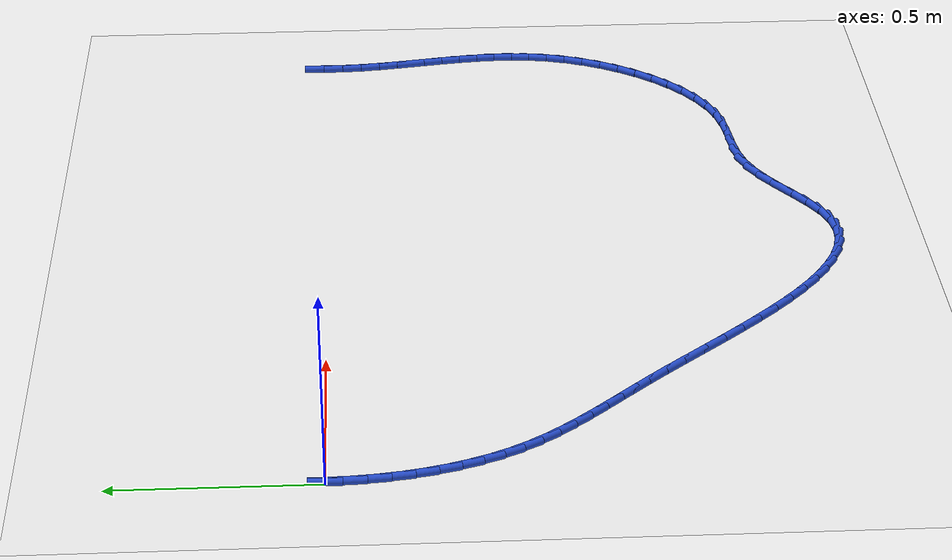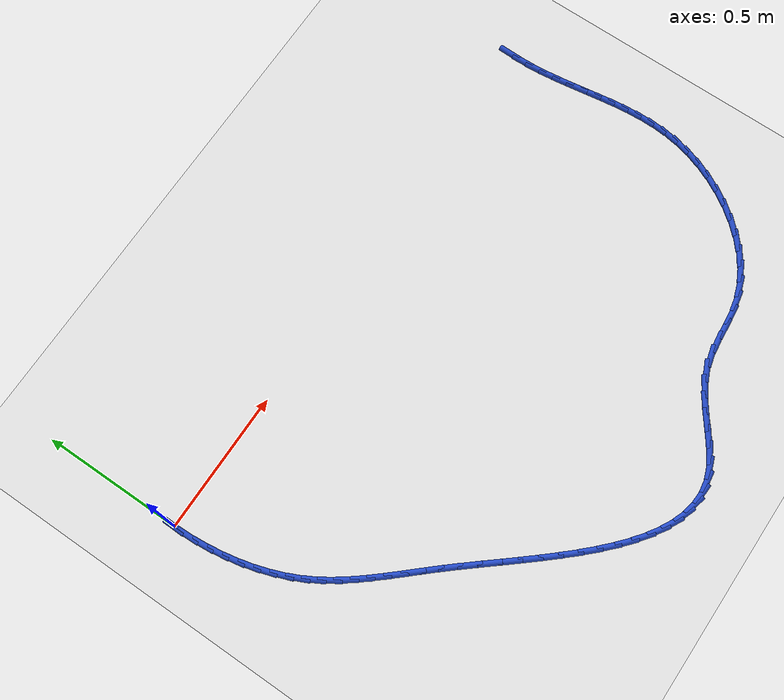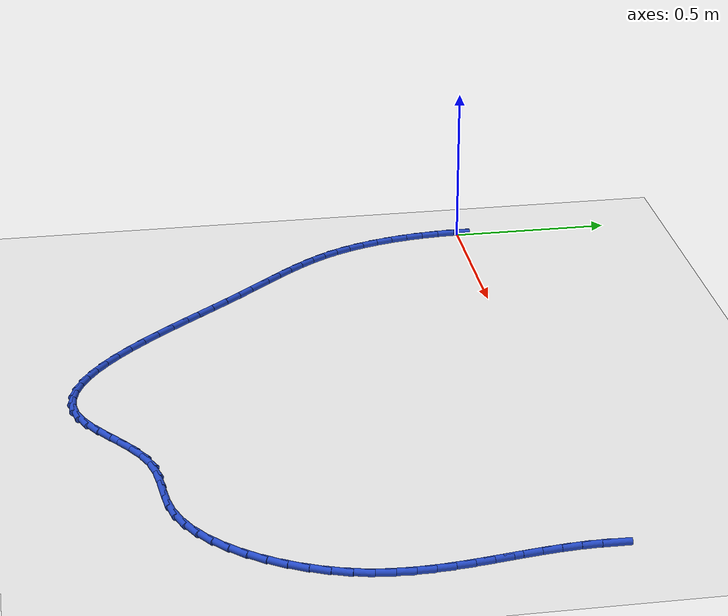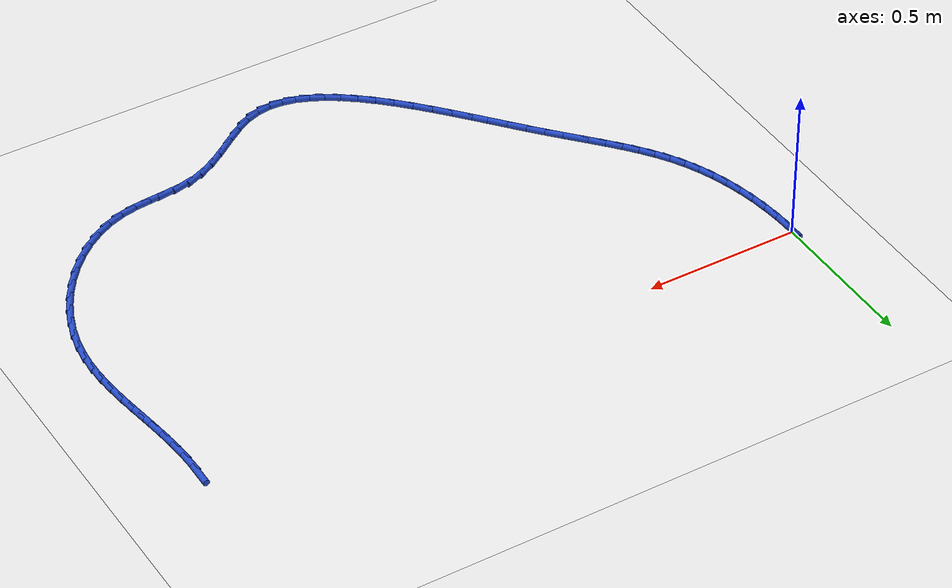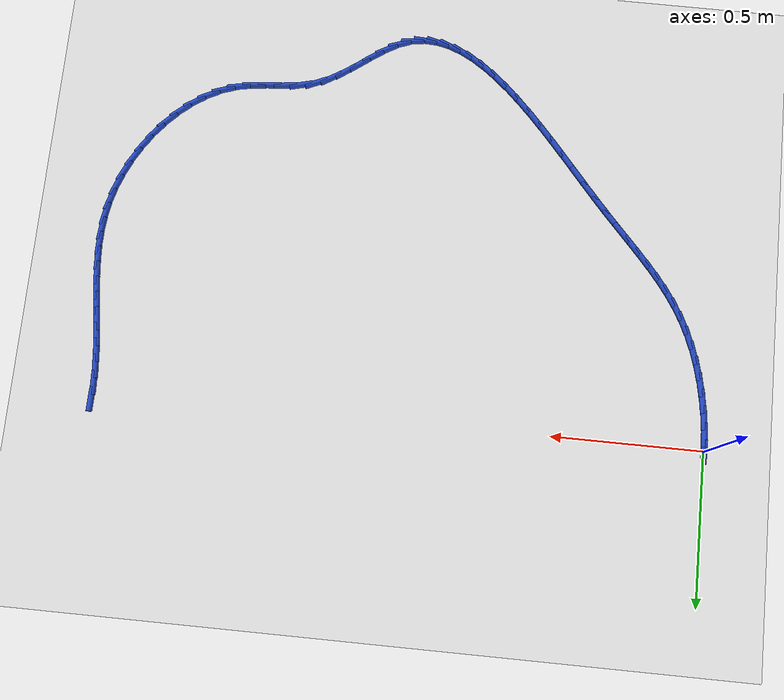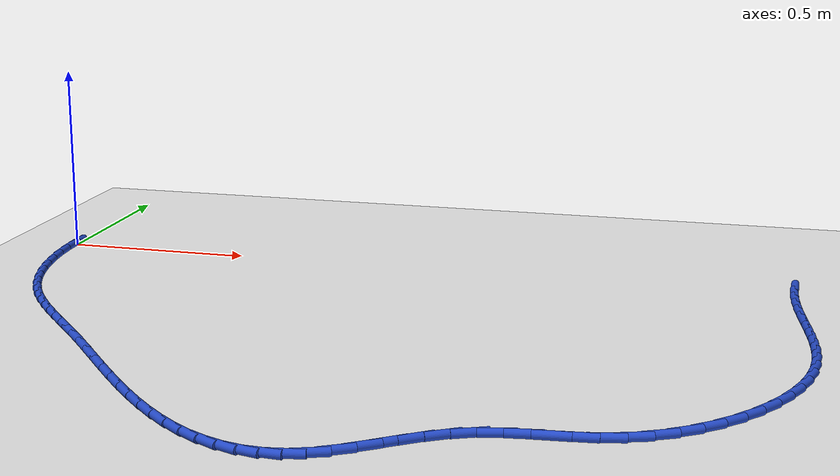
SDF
<sdf version="1.6">
 <world name="default">
  <model name="ground_plane">
   <static>1</static>
   <link name="link">
    <collision name="collision">
     <geometry><plane><normal>0 0 1</normal><size>100 100</size></plane></geometry>
     <surface><friction><ode><mu>100</mu><mu2>50</mu2></ode></friction></surface>
    </collision>
    <visual name="visual">
     <cast_shadows>0</cast_shadows>
     <geometry><plane><normal>0 0 1</normal><size>100 100</size></plane></geometry>
     <material>
      <script><uri>file://media/materials/scripts/gazebo.material</uri><name>Gazebo/WhiteGlow</name></script>
     </material>
    </visual>
   </link>
  </model>
  <model name="line">
   <link name="link_0">
    <pose>1.5612511283791264e-17 -6.938893903907228e-17 0.01 0 1.57 1.5524016907554703</pose>
    <collision name="collision">
     <geometry><cylinder><radius>0.01</radius><length>0.08</length></cylinder></geometry>
    </collision>
    <visual name="visual">
     <material>
      <script><name>Gazebo/Blue</name><uri>file://media/materials/scripts/gazebo.material</uri></script>
     </material>
     <geometry><cylinder><radius>0.01</radius><length>0.08</length></cylinder></geometry>
    </visual>
   </link>
   <link name="link_71">
    <pose>2.0009690979474333 0.025901812945391893 0.01 0 1.57 1.555292005066923</pose>
    <collision name="collision">
     <geometry><cylinder><radius>0.01</radius><length>0.08</length></cylinder></geometry>
    </collision>
    <visual name="visual">
     <material>
      <script><name>Gazebo/Blue</name><uri>file://media/materials/scripts/gazebo.material</uri></script>
     </material>
     <geometry><cylinder><radius>0.01</radius><length>0.08</length></cylinder></geometry>
    </visual>
   </link>
   <link name="link_72">
    <pose>2.00012045644766 -0.028829604115475915 0.01 0 1.57 -1.527593598485886</pose>
    <collision name="collision">
     <geometry><cylinder><radius>0.01</radius><length>0.08</length></cylinder></geometry>
    </collision>
    <visual name="visual">
     <material>
      <script><name>Gazebo/Blue</name><uri>file://media/materials/scripts/gazebo.material</uri></script>
     </material>
     <geometry><cylinder><radius>0.01</radius><length>0.08</length></cylinder></geometry>
    </visual>
   </link>
   <link name="link_73">
    <pose>2.0024521432457614 -0.08276684442005745 0.01 0 1.57 -1.4807374004935128</pose>
    <collision name="collision">
     <geometry><cylinder><radius>0.01</radius><length>0.08</length></cylinder></geometry>
    </collision>
    <visual name="visual">
     <material>
      <script><name>Gazebo/Blue</name><uri>file://media/materials/scripts/gazebo.material</uri></script>
     </material>
     <geometry><cylinder><radius>0.01</radius><length>0.08</length></cylinder></geometry>
    </visual>
   </link>
   <link name="link_74">
    <pose>2.0072606671577127 -0.1360155011964274 0.01 0 1.57 -1.446466355762532</pose>
    <collision name="collision">
     <geometry><cylinder><radius>0.01</radius><length>0.08</length></cylinder></geometry>
    </collision>
    <visual name="visual">
     <material>
      <script><name>Gazebo/Blue</name><uri>file://media/materials/scripts/gazebo.material</uri></script>
     </material>
     <geometry><cylinder><radius>0.01</radius><length>0.08</length></cylinder></geometry>
    </visual>
   </link>
   <link name="link_75">
    <pose>2.0138425369994892 -0.18868116767266307 0.01 0 1.57 -1.425215871566464</pose>
    <collision name="collision">
     <geometry><cylinder><radius>0.01</radius><length>0.08</length></cylinder></geometry>
    </collision>
    <visual name="visual">
     <material>
      <script><name>Gazebo/Blue</name><uri>file://media/materials/scripts/gazebo.material</uri></script>
     </material>
     <geometry><cylinder><radius>0.01</radius><length>0.08</length></cylinder></geometry>
    </visual>
   </link>
   <link name="link_76">
    <pose>2.0214942615870637 -0.24086943707684075 0.01 0 1.57 -1.4172737808712057</pose>
    <collision name="collision">
     <geometry><cylinder><radius>0.01</radius><length>0.08</length></cylinder></geometry>
    </collision>
    <visual name="visual">
     <material>
      <script><name>Gazebo/Blue</name><uri>file://media/materials/scripts/gazebo.material</uri></script>
     </material>
     <geometry><cylinder><radius>0.01</radius><length>0.08</length></cylinder></geometry>
    </visual>
   </link>
   <link name="link_77">
    <pose>2.0295123497364127 -0.292685902637037 0.01 0 1.57 -1.4228850385830123</pose>
    <collision name="collision">
     <geometry><cylinder><radius>0.01</radius><length>0.08</length></cylinder></geometry>
    </collision>
    <visual name="visual">
     <material>
      <script><name>Gazebo/Blue</name><uri>file://media/materials/scripts/gazebo.material</uri></script>
     </material>
     <geometry><cylinder><radius>0.01</radius><length>0.08</length></cylinder></geometry>
    </visual>
   </link>
   <link name="link_78">
    <pose>2.037193310263509 -0.34423615758132875 0.01 0 1.57 -1.4422927855253744</pose>
    <collision name="collision">
     <geometry><cylinder><radius>0.01</radius><length>0.08</length></cylinder></geometry>
    </collision>
    <visual name="visual">
     <material>
      <script><name>Gazebo/Blue</name><uri>file://media/materials/scripts/gazebo.material</uri></script>
     </material>
     <geometry><cylinder><radius>0.01</radius><length>0.08</length></cylinder></geometry>
    </visual>
   </link>
   <link name="link_79">
    <pose>2.0438336519843285 -0.39562579513779117 0.01 0 1.57 -1.4757052227229384</pose>
    <collision name="collision">
     <geometry><cylinder><radius>0.01</radius><length>0.08</length></cylinder></geometry>
    </collision>
    <visual name="visual">
     <material>
      <script><name>Gazebo/Blue</name><uri>file://media/materials/scripts/gazebo.material</uri></script>
     </material>
     <geometry><cylinder><radius>0.01</radius><length>0.08</length></cylinder></geometry>
    </visual>
   </link>
   <link name="link_80">
    <pose>2.048729883714845 -0.44696040853450103 0.01 0 1.57 -1.5231798828189957</pose>
    <collision name="collision">
     <geometry><cylinder><radius>0.01</radius><length>0.08</length></cylinder></geometry>
    </collision>
    <visual name="visual">
     <material>
      <script><name>Gazebo/Blue</name><uri>file://media/materials/scripts/gazebo.material</uri></script>
     </material>
     <geometry><cylinder><radius>0.01</radius><length>0.08</length></cylinder></geometry>
    </visual>
   </link>
   <link name="link_81">
    <pose>2.051178514271033 -0.4983455909995351 0.01 0 1.57 1.5571680771700847</pose>
    <collision name="collision">
     <geometry><cylinder><radius>0.01</radius><length>0.08</length></cylinder></geometry>
    </collision>
    <visual name="visual">
     <material>
      <script><name>Gazebo/Blue</name><uri>file://media/materials/scripts/gazebo.material</uri></script>
     </material>
     <geometry><cylinder><radius>0.01</radius><length>0.08</length></cylinder></geometry>
    </visual>
   </link>
   <link name="link_82">
    <pose>2.050476052468867 -0.5498869357609704 0.01 0 1.57 1.483053609796497</pose>
    <collision name="collision">
     <geometry><cylinder><radius>0.01</radius><length>0.08</length></cylinder></geometry>
    </collision>
    <visual name="visual">
     <material>
      <script><name>Gazebo/Blue</name><uri>file://media/materials/scripts/gazebo.material</uri></script>
     </material>
     <geometry><cylinder><radius>0.01</radius><length>0.08</length></cylinder></geometry>
    </visual>
   </link>
   <link name="link_83">
    <pose>2.045919007124323 -0.6016900360468818 0.01 0 1.57 1.3978242276749737</pose>
    <collision name="collision">
     <geometry><cylinder><radius>0.01</radius><length>0.08</length></cylinder></geometry>
    </collision>
    <visual name="visual">
     <material>
      <script><name>Gazebo/Blue</name><uri>file://media/materials/scripts/gazebo.material</uri></script>
     </material>
     <geometry><cylinder><radius>0.01</radius><length>0.08</length></cylinder></geometry>
    </visual>
   </link>
   <link name="link_84">
    <pose>2.036803887053374 -0.6538604850853464 0.01 0 1.57 1.3059098694865447</pose>
    <collision name="collision">
     <geometry><cylinder><radius>0.01</radius><length>0.08</length></cylinder></geometry>
    </collision>
    <visual name="visual">
     <material>
      <script><name>Gazebo/Blue</name><uri>file://media/materials/scripts/gazebo.material</uri></script>
     </material>
     <geometry><cylinder><radius>0.01</radius><length>0.08</length></cylinder></geometry>
    </visual>
   </link>
   <link name="link_85">
    <pose>2.0225521774841093 -0.7063992864144898 0.01 0 1.57 1.2176327936521416</pose>
    <collision name="collision">
     <geometry><cylinder><radius>0.01</radius><length>0.08</length></cylinder></geometry>
    </collision>
    <visual name="visual">
     <material>
      <script><name>Gazebo/Blue</name><uri>file://media/materials/scripts/gazebo.material</uri></script>
     </material>
     <geometry><cylinder><radius>0.01</radius><length>0.08</length></cylinder></geometry>
    </visual>
   </link>
   <link name="link_86">
    <pose>2.0032562549576136 -0.7587459911092931 0.01 0 1.57 1.1336282608530777</pose>
    <collision name="collision">
     <geometry><cylinder><radius>0.01</radius><length>0.08</length></cylinder></geometry>
    </collision>
    <visual name="visual">
     <material>
      <script><name>Gazebo/Blue</name><uri>file://media/materials/scripts/gazebo.material</uri></script>
     </material>
     <geometry><cylinder><radius>0.01</radius><length>0.08</length></cylinder></geometry>
    </visual>
   </link>
   <link name="link_87">
    <pose>1.979232653239716 -0.8101525585685191 0.01 0 1.57 1.0512840198426938</pose>
    <collision name="collision">
     <geometry><cylinder><radius>0.01</radius><length>0.08</length></cylinder></geometry>
    </collision>
    <visual name="visual">
     <material>
      <script><name>Gazebo/Blue</name><uri>file://media/materials/scripts/gazebo.material</uri></script>
     </material>
     <geometry><cylinder><radius>0.01</radius><length>0.08</length></cylinder></geometry>
    </visual>
   </link>
   <link name="link_88">
    <pose>1.9507980638258764 -0.8598708161908757 0.01 0 1.57 0.9681835438101066</pose>
    <collision name="collision">
     <geometry><cylinder><radius>0.01</radius><length>0.08</length></cylinder></geometry>
    </collision>
    <visual name="visual">
     <material>
      <script><name>Gazebo/Blue</name><uri>file://media/materials/scripts/gazebo.material</uri></script>
     </material>
     <geometry><cylinder><radius>0.01</radius><length>0.08</length></cylinder></geometry>
    </visual>
   </link>
   <link name="link_89">
    <pose>1.9182691782115524 -0.907152591375073 0.01 0 1.57 0.8819906615480934</pose>
    <collision name="collision">
     <geometry><cylinder><radius>0.01</radius><length>0.08</length></cylinder></geometry>
    </collision>
    <visual name="visual">
     <material>
      <script><name>Gazebo/Blue</name><uri>file://media/materials/scripts/gazebo.material</uri></script>
     </material>
     <geometry><cylinder><radius>0.01</radius><length>0.08</length></cylinder></geometry>
    </visual>
   </link>
   <link name="link_90">
    <pose>1.8819626878922038 -0.9512497115198204 0.01 0 1.57 0.7903634741954115</pose>
    <collision name="collision">
     <geometry><cylinder><radius>0.01</radius><length>0.08</length></cylinder></geometry>
    </collision>
    <visual name="visual">
     <material>
      <script><name>Gazebo/Blue</name><uri>file://media/materials/scripts/gazebo.material</uri></script>
     </material>
     <geometry><cylinder><radius>0.01</radius><length>0.08</length></cylinder></geometry>
    </visual>
   </link>
   <link name="link_91">
    <pose>1.8421952843632883 -0.9914140040238278 0.01 0 1.57 0.6909249462815353</pose>
    <collision name="collision">
     <geometry><cylinder><radius>0.01</radius><length>0.08</length></cylinder></geometry>
    </collision>
    <visual name="visual">
     <material>
      <script><name>Gazebo/Blue</name><uri>file://media/materials/scripts/gazebo.material</uri></script>
     </material>
     <geometry><cylinder><radius>0.01</radius><length>0.08</length></cylinder></geometry>
    </visual>
   </link>
   <link name="link_92">
    <pose>1.799283659120267 -1.0268972962858038 0.01 0 1.57 0.581333765559419</pose>
    <collision name="collision">
     <geometry><cylinder><radius>0.01</radius><length>0.08</length></cylinder></geometry>
    </collision>
    <visual name="visual">
     <material>
      <script><name>Gazebo/Blue</name><uri>file://media/materials/scripts/gazebo.material</uri></script>
     </material>
     <geometry><cylinder><radius>0.01</radius><length>0.08</length></cylinder></geometry>
    </visual>
   </link>
   <link name="link_93">
    <pose>1.7535445036585966 -1.0569514157044577 0.01 0 1.57 0.45952352879976055</pose>
    <collision name="collision">
     <geometry><cylinder><radius>0.01</radius><length>0.08</length></cylinder></geometry>
    </collision>
    <visual name="visual">
     <material>
      <script><name>Gazebo/Blue</name><uri>file://media/materials/scripts/gazebo.material</uri></script>
     </material>
     <geometry><cylinder><radius>0.01</radius><length>0.08</length></cylinder></geometry>
    </visual>
   </link>
   <link name="link_94">
    <pose>1.705294509473737 -1.0808281896784993 0.01 0 1.57 0.32418469157742663</pose>
    <collision name="collision">
     <geometry><cylinder><radius>0.01</radius><length>0.08</length></cylinder></geometry>
    </collision>
    <visual name="visual">
     <material>
      <script><name>Gazebo/Blue</name><uri>file://media/materials/scripts/gazebo.material</uri></script>
     </material>
     <geometry><cylinder><radius>0.01</radius><length>0.08</length></cylinder></geometry>
    </visual>
   </link>
   <link name="link_95">
    <pose>1.6548503680611466 -1.0977794456066383 0.01 0 1.57 0.18608619970227142</pose>
    <collision name="collision">
     <geometry><cylinder><radius>0.01</radius><length>0.08</length></cylinder></geometry>
    </collision>
    <visual name="visual">
     <material>
      <script><name>Gazebo/Blue</name><uri>file://media/materials/scripts/gazebo.material</uri></script>
     </material>
     <geometry><cylinder><radius>0.01</radius><length>0.08</length></cylinder></geometry>
    </visual>
   </link>
   <link name="link_96">
    <pose>1.6026006153679992 -1.1076162092311765 0.01 0 1.57 0.10033060593654737</pose>
    <collision name="collision">
     <geometry><cylinder><radius>0.01</radius><length>0.08</length></cylinder></geometry>
    </collision>
    <visual name="visual">
     <material>
      <script><name>Gazebo/Blue</name><uri>file://media/materials/scripts/gazebo.material</uri></script>
     </material>
     <geometry><cylinder><radius>0.01</radius><length>0.08</length></cylinder></geometry>
    </visual>
   </link>
   <link name="link_97">
    <pose>1.5492977170561897 -1.1129821383042733 0.01 0 1.57 0.08269851919452541</pose>
    <collision name="collision">
     <geometry><cylinder><radius>0.01</radius><length>0.08</length></cylinder></geometry>
    </collision>
    <visual name="visual">
     <material>
      <script><name>Gazebo/Blue</name><uri>file://media/materials/scripts/gazebo.material</uri></script>
     </material>
     <geometry><cylinder><radius>0.01</radius><length>0.08</length></cylinder></geometry>
    </visual>
   </link>
   <link name="link_98">
    <pose>1.495809099102768 -1.1174156794766064 0.01 0 1.57 0.13253346845307523</pose>
    <collision name="collision">
     <geometry><cylinder><radius>0.01</radius><length>0.08</length></cylinder></geometry>
    </collision>
    <visual name="visual">
     <material>
      <script><name>Gazebo/Blue</name><uri>file://media/materials/scripts/gazebo.material</uri></script>
     </material>
     <geometry><cylinder><radius>0.01</radius><length>0.08</length></cylinder></geometry>
    </visual>
   </link>
   <link name="link_99">
    <pose>1.4430022317926334 -1.1244556242671706 0.01 0 1.57 0.25177418851568784</pose>
    <collision name="collision">
     <geometry><cylinder><radius>0.01</radius><length>0.08</length></cylinder></geometry>
    </collision>
    <visual name="visual">
     <material>
      <script><name>Gazebo/Blue</name><uri>file://media/materials/scripts/gazebo.material</uri></script>
     </material>
     <geometry><cylinder><radius>0.01</radius><length>0.08</length></cylinder></geometry>
    </visual>
   </link>
   <link name="link_100">
    <pose>1.3917445854106834 -1.1376407641949609 0.01 0 1.57 0.41930967961771437</pose>
    <collision name="collision">
     <geometry><cylinder><radius>0.01</radius><length>0.08</length></cylinder></geometry>
    </collision>
    <visual name="visual">
     <material>
      <script><name>Gazebo/Blue</name><uri>file://media/materials/scripts/gazebo.material</uri></script>
     </material>
     <geometry><cylinder><radius>0.01</radius><length>0.08</length></cylinder></geometry>
    </visual>
   </link>
   <link name="link_101">
    <pose>1.342705847801569 -1.1594995270905357 0.01 0 1.57 0.54683121609209</pose>
    <collision name="collision">
     <geometry><cylinder><radius>0.01</radius><length>0.08</length></cylinder></geometry>
    </collision>
    <visual name="visual">
     <material>
      <script><name>Gazebo/Blue</name><uri>file://media/materials/scripts/gazebo.material</uri></script>
     </material>
     <geometry><cylinder><radius>0.01</radius><length>0.08</length></cylinder></geometry>
    </visual>
   </link>
   <link name="link_102">
    <pose>1.2956869718850186 -1.188122443153548 0.01 0 1.57 0.6173994171925615</pose>
    <collision name="collision">
     <geometry><cylinder><radius>0.01</radius><length>0.08</length></cylinder></geometry>
    </collision>
    <visual name="visual">
     <material>
      <script><name>Gazebo/Blue</name><uri>file://media/materials/scripts/gazebo.material</uri></script>
     </material>
     <geometry><cylinder><radius>0.01</radius><length>0.08</length></cylinder></geometry>
    </visual>
   </link>
   <link name="link_103">
    <pose>1.2502504594483694 -1.2203819245073877 0.01 0 1.57 0.6369623829071067</pose>
    <collision name="collision">
     <geometry><cylinder><radius>0.01</radius><length>0.08</length></cylinder></geometry>
    </collision>
    <visual name="visual">
     <material>
      <script><name>Gazebo/Blue</name><uri>file://media/materials/scripts/gazebo.material</uri></script>
     </material>
     <geometry><cylinder><radius>0.01</radius><length>0.08</length></cylinder></geometry>
    </visual>
   </link>
   <link name="link_104">
    <pose>1.2059588056895396 -1.2531503496136658 0.01 0 1.57 0.6051723428902357</pose>
    <collision name="collision">
     <geometry><cylinder><radius>0.01</radius><length>0.08</length></cylinder></geometry>
    </collision>
    <visual name="visual">
     <material>
      <script><name>Gazebo/Blue</name><uri>file://media/materials/scripts/gazebo.material</uri></script>
     </material>
     <geometry><cylinder><radius>0.01</radius><length>0.08</length></cylinder></geometry>
    </visual>
   </link>
   <link name="link_105">
    <pose>1.1623745058064505 -1.2833000969339932 0.01 0 1.57 0.513074391189238</pose>
    <collision name="collision">
     <geometry><cylinder><radius>0.01</radius><length>0.08</length></cylinder></geometry>
    </collision>
    <visual name="visual">
     <material>
      <script><name>Gazebo/Blue</name><uri>file://media/materials/scripts/gazebo.material</uri></script>
     </material>
     <geometry><cylinder><radius>0.01</radius><length>0.08</length></cylinder></geometry>
    </visual>
   </link>
   <link name="link_106">
    <pose>1.1190600549970207 -1.307703544929981 0.01 0 1.57 0.3472021197142845</pose>
    <collision name="collision">
     <geometry><cylinder><radius>0.01</radius><length>0.08</length></cylinder></geometry>
    </collision>
    <visual name="visual">
     <material>
      <script><name>Gazebo/Blue</name><uri>file://media/materials/scripts/gazebo.material</uri></script>
     </material>
     <geometry><cylinder><radius>0.01</radius><length>0.08</length></cylinder></geometry>
    </visual>
   </link>
   <link name="link_107">
    <pose>1.0756033796435929 -1.323428822469384 0.01 0 1.57 0.14406270010456765</pose>
    <collision name="collision">
     <geometry><cylinder><radius>0.01</radius><length>0.08</length></cylinder></geometry>
    </collision>
    <visual name="visual">
     <material>
      <script><name>Gazebo/Blue</name><uri>file://media/materials/scripts/gazebo.material</uri></script>
     </material>
     <geometry><cylinder><radius>0.01</radius><length>0.08</length></cylinder></geometry>
    </visual>
   </link>
   <link name="link_108">
    <pose>1.031881776071749 -1.329771413739679 0.01 0 1.57 -0.05299899240003369</pose>
    <collision name="collision">
     <geometry><cylinder><radius>0.01</radius><length>0.08</length></cylinder></geometry>
    </collision>
    <visual name="visual">
     <material>
      <script><name>Gazebo/Blue</name><uri>file://media/materials/scripts/gazebo.material</uri></script>
     </material>
     <geometry><cylinder><radius>0.01</radius><length>0.08</length></cylinder></geometry>
    </visual>
   </link>
   <link name="link_109">
    <pose>0.9879562972646163 -1.3274412254635515 0.01 0 1.57 -0.22898575991409809</pose>
    <collision name="collision">
     <geometry><cylinder><radius>0.01</radius><length>0.08</length></cylinder></geometry>
    </collision>
    <visual name="visual">
     <material>
      <script><name>Gazebo/Blue</name><uri>file://media/materials/scripts/gazebo.material</uri></script>
     </material>
     <geometry><cylinder><radius>0.01</radius><length>0.08</length></cylinder></geometry>
    </visual>
   </link>
   <link name="link_110">
    <pose>0.9438909296725397 -1.3171707440197817 0.01 0 1.57 -0.37702094770193484</pose>
    <collision name="collision">
     <geometry><cylinder><radius>0.01</radius><length>0.08</length></cylinder></geometry>
    </collision>
    <visual name="visual">
     <material>
      <script><name>Gazebo/Blue</name><uri>file://media/materials/scripts/gazebo.material</uri></script>
     </material>
     <geometry><cylinder><radius>0.01</radius><length>0.08</length></cylinder></geometry>
    </visual>
   </link>
   <link name="link_111">
    <pose>0.8997496597458613 -1.2996924557871512 0.01 0 1.57 -0.49707566649768786</pose>
    <collision name="collision">
     <geometry><cylinder><radius>0.01</radius><length>0.08</length></cylinder></geometry>
    </collision>
    <visual name="visual">
     <material>
      <script><name>Gazebo/Blue</name><uri>file://media/materials/scripts/gazebo.material</uri></script>
     </material>
     <geometry><cylinder><radius>0.01</radius><length>0.08</length></cylinder></geometry>
    </visual>
   </link>
   <link name="link_112">
    <pose>0.8555964739349236 -1.2757388471444406 0.01 0 1.57 -0.5926301916593898</pose>
    <collision name="collision">
     <geometry><cylinder><radius>0.01</radius><length>0.08</length></cylinder></geometry>
    </collision>
    <visual name="visual">
     <material>
      <script><name>Gazebo/Blue</name><uri>file://media/materials/scripts/gazebo.material</uri></script>
     </material>
     <geometry><cylinder><radius>0.01</radius><length>0.08</length></cylinder></geometry>
    </visual>
   </link>
   <link name="link_113">
    <pose>0.8114953586900687 -1.246042404470431 0.01 0 1.57 -0.6680336843901751</pose>
    <collision name="collision">
     <geometry><cylinder><radius>0.01</radius><length>0.08</length></cylinder></geometry>
    </collision>
    <visual name="visual">
     <material>
      <script><name>Gazebo/Blue</name><uri>file://media/materials/scripts/gazebo.material</uri></script>
     </material>
     <geometry><cylinder><radius>0.01</radius><length>0.08</length></cylinder></geometry>
    </visual>
   </link>
   <link name="link_114">
    <pose>0.7675103004616409 -1.2113356141439036 0.01 0 1.57 -0.727239611482666</pose>
    <collision name="collision">
     <geometry><cylinder><radius>0.01</radius><length>0.08</length></cylinder></geometry>
    </collision>
    <visual name="visual">
     <material>
      <script><name>Gazebo/Blue</name><uri>file://media/materials/scripts/gazebo.material</uri></script>
     </material>
     <geometry><cylinder><radius>0.01</radius><length>0.08</length></cylinder></geometry>
    </visual>
   </link>
   <link name="link_115">
    <pose>0.7237052856999822 -1.17235096254364 0.01 0 1.57 -0.7734235210308071</pose>
    <collision name="collision">
     <geometry><cylinder><radius>0.01</radius><length>0.08</length></cylinder></geometry>
    </collision>
    <visual name="visual">
     <material>
      <script><name>Gazebo/Blue</name><uri>file://media/materials/scripts/gazebo.material</uri></script>
     </material>
     <geometry><cylinder><radius>0.01</radius><length>0.08</length></cylinder></geometry>
    </visual>
   </link>
   <link name="link_116">
    <pose>0.6801443008554352 -1.1298209360484206 0.01 0 1.57 -0.808983446549202</pose>
    <collision name="collision">
     <geometry><cylinder><radius>0.01</radius><length>0.08</length></cylinder></geometry>
    </collision>
    <visual name="visual">
     <material>
      <script><name>Gazebo/Blue</name><uri>file://media/materials/scripts/gazebo.material</uri></script>
     </material>
     <geometry><cylinder><radius>0.01</radius><length>0.08</length></cylinder></geometry>
    </visual>
   </link>
   <link name="link_117">
    <pose>0.6368913323783421 -1.0844780210370253 0.01 0 1.57 -0.8356563153162583</pose>
    <collision name="collision">
     <geometry><cylinder><radius>0.01</radius><length>0.08</length></cylinder></geometry>
    </collision>
    <visual name="visual">
     <material>
      <script><name>Gazebo/Blue</name><uri>file://media/materials/scripts/gazebo.material</uri></script>
     </material>
     <geometry><cylinder><radius>0.01</radius><length>0.08</length></cylinder></geometry>
    </visual>
   </link>
   <link name="link_118">
    <pose>0.5940103667190471 -1.0370547038882376 0.01 0 1.57 -0.854641804803414</pose>
    <collision name="collision">
     <geometry><cylinder><radius>0.01</radius><length>0.08</length></cylinder></geometry>
    </collision>
    <visual name="visual">
     <material>
      <script><name>Gazebo/Blue</name><uri>file://media/materials/scripts/gazebo.material</uri></script>
     </material>
     <geometry><cylinder><radius>0.01</radius><length>0.08</length></cylinder></geometry>
    </visual>
   </link>
   <link name="link_119">
    <pose>0.5515653903278921 -0.9882834709808368 0.01 0 1.57 -0.8666981033830076</pose>
    <collision name="collision">
     <geometry><cylinder><radius>0.01</radius><length>0.08</length></cylinder></geometry>
    </collision>
    <visual name="visual">
     <material>
      <script><name>Gazebo/Blue</name><uri>file://media/materials/scripts/gazebo.material</uri></script>
     </material>
     <geometry><cylinder><radius>0.01</radius><length>0.08</length></cylinder></geometry>
    </visual>
   </link>
   <link name="link_120">
    <pose>0.5096203896552196 -0.938896808693604 0.01 0 1.57 -0.872201121365766</pose>
    <collision name="collision">
     <geometry><cylinder><radius>0.01</radius><length>0.08</length></cylinder></geometry>
    </collision>
    <visual name="visual">
     <material>
      <script><name>Gazebo/Blue</name><uri>file://media/materials/scripts/gazebo.material</uri></script>
     </material>
     <geometry><cylinder><radius>0.01</radius><length>0.08</length></cylinder></geometry>
    </visual>
   </link>
   <link name="link_121">
    <pose>0.4682393511513729 -0.889627203405321 0.01 0 1.57 -0.8711657183488817</pose>
    <collision name="collision">
     <geometry><cylinder><radius>0.01</radius><length>0.08</length></cylinder></geometry>
    </collision>
    <visual name="visual">
     <material>
      <script><name>Gazebo/Blue</name><uri>file://media/materials/scripts/gazebo.material</uri></script>
     </material>
     <geometry><cylinder><radius>0.01</radius><length>0.08</length></cylinder></geometry>
    </visual>
   </link>
   <link name="link_122">
    <pose>0.42748626126669376 -0.8412071414947674 0.01 0 1.57 -0.8632261510790192</pose>
    <collision name="collision">
     <geometry><cylinder><radius>0.01</radius><length>0.08</length></cylinder></geometry>
    </collision>
    <visual name="visual">
     <material>
      <script><name>Gazebo/Blue</name><uri>file://media/materials/scripts/gazebo.material</uri></script>
     </material>
     <geometry><cylinder><radius>0.01</radius><length>0.08</length></cylinder></geometry>
    </visual>
   </link>
   <link name="link_123">
    <pose>0.3874251064515264 -0.7943691093407259 0.01 0 1.57 -0.8486658194069999</pose>
    <collision name="collision">
     <geometry><cylinder><radius>0.01</radius><length>0.08</length></cylinder></geometry>
    </collision>
    <visual name="visual">
     <material>
      <script><name>Gazebo/Blue</name><uri>file://media/materials/scripts/gazebo.material</uri></script>
     </material>
     <geometry><cylinder><radius>0.01</radius><length>0.08</length></cylinder></geometry>
    </visual>
   </link>
   <link name="link_124">
    <pose>0.348132480895037 -0.7497611996907008 0.01 0 1.57 -0.8373306776205288</pose>
    <collision name="collision">
     <geometry><cylinder><radius>0.01</radius><length>0.08</length></cylinder></geometry>
    </collision>
    <visual name="visual">
     <material>
      <script><name>Gazebo/Blue</name><uri>file://media/materials/scripts/gazebo.material</uri></script>
     </material>
     <geometry><cylinder><radius>0.01</radius><length>0.08</length></cylinder></geometry>
    </visual>
   </link>
   <link name="link_125">
    <pose>0.30980465679836866 -0.7072304050984672 0.01 0 1.57 -0.8358805994593842</pose>
    <collision name="collision">
     <geometry><cylinder><radius>0.01</radius><length>0.08</length></cylinder></geometry>
    </collision>
    <visual name="visual">
     <material>
      <script><name>Gazebo/Blue</name><uri>file://media/materials/scripts/gazebo.material</uri></script>
     </material>
     <geometry><cylinder><radius>0.01</radius><length>0.08</length></cylinder></geometry>
    </visual>
   </link>
   <link name="link_126">
    <pose>0.2727040131838131 -0.6661812125450947 0.01 0 1.57 -0.8454667610008695</pose>
    <collision name="collision">
     <geometry><cylinder><radius>0.01</radius><length>0.08</length></cylinder></geometry>
    </collision>
    <visual name="visual">
     <material>
      <script><name>Gazebo/Blue</name><uri>file://media/materials/scripts/gazebo.material</uri></script>
     </material>
     <geometry><cylinder><radius>0.01</radius><length>0.08</length></cylinder></geometry>
    </visual>
   </link>
   <link name="link_127">
    <pose>0.23709362447524177 -0.6260134541353782 0.01 0 1.57 -0.8669788657166422</pose>
    <collision name="collision">
     <geometry><cylinder><radius>0.01</radius><length>0.08</length></cylinder></geometry>
    </collision>
    <visual name="visual">
     <material>
      <script><name>Gazebo/Blue</name><uri>file://media/materials/scripts/gazebo.material</uri></script>
     </material>
     <geometry><cylinder><radius>0.01</radius><length>0.08</length></cylinder></geometry>
    </visual>
   </link>
   <link name="link_128">
    <pose>0.20323656509652435 -0.5861269619741123 0.01 0 1.57 -0.900983323972883</pose>
    <collision name="collision">
     <geometry><cylinder><radius>0.01</radius><length>0.08</length></cylinder></geometry>
    </collision>
    <visual name="visual">
     <material>
      <script><name>Gazebo/Blue</name><uri>file://media/materials/scripts/gazebo.material</uri></script>
     </material>
     <geometry><cylinder><radius>0.01</radius><length>0.08</length></cylinder></geometry>
    </visual>
   </link>
   <link name="link_129">
    <pose>0.1713959094715309 -0.5459215681660907 0.01 0 1.57 -0.9475493883896934</pose>
    <collision name="collision">
     <geometry><cylinder><radius>0.01</radius><length>0.08</length></cylinder></geometry>
    </collision>
    <visual name="visual">
     <material>
      <script><name>Gazebo/Blue</name><uri>file://media/materials/scripts/gazebo.material</uri></script>
     </material>
     <geometry><cylinder><radius>0.01</radius><length>0.08</length></cylinder></geometry>
    </visual>
   </link>
   <link name="link_130">
    <pose>0.14183473202413172 -0.5047971048161081 0.01 0 1.57 -1.0060437252002477</pose>
    <collision name="collision">
     <geometry><cylinder><radius>0.01</radius><length>0.08</length></cylinder></geometry>
    </collision>
    <visual name="visual">
     <material>
      <script><name>Gazebo/Blue</name><uri>file://media/materials/scripts/gazebo.material</uri></script>
     </material>
     <geometry><cylinder><radius>0.01</radius><length>0.08</length></cylinder></geometry>
    </visual>
   </link>
   <link name="link_131">
    <pose>0.11481610717819656 -0.4621534040289584 0.01 0 1.57 -1.0748465708976542</pose>
    <collision name="collision">
     <geometry><cylinder><radius>0.01</radius><length>0.08</length></cylinder></geometry>
    </collision>
    <visual name="visual">
     <material>
      <script><name>Gazebo/Blue</name><uri>file://media/materials/scripts/gazebo.material</uri></script>
     </material>
     <geometry><cylinder><radius>0.01</radius><length>0.08</length></cylinder></geometry>
    </visual>
   </link>
   <link name="link_132">
    <pose>0.09060071554841014 -0.41739752981131406 0.01 0 1.57 -1.146672052866787</pose>
    <collision name="collision">
     <geometry><cylinder><radius>0.01</radius><length>0.08</length></cylinder></geometry>
    </collision>
    <visual name="visual">
     <material>
      <script><name>Gazebo/Blue</name><uri>file://media/materials/scripts/gazebo.material</uri></script>
     </material>
     <geometry><cylinder><radius>0.01</radius><length>0.08</length></cylinder></geometry>
    </visual>
   </link>
   <link name="link_133">
    <pose>0.06933143109431916 -0.37029245013048706 0.01 0 1.57 -1.2136883947952173</pose>
    <collision name="collision">
     <geometry><cylinder><radius>0.01</radius><length>0.08</length></cylinder></geometry>
    </collision>
    <visual name="visual">
     <material>
      <script><name>Gazebo/Blue</name><uri>file://media/materials/scripts/gazebo.material</uri></script>
     </material>
     <geometry><cylinder><radius>0.01</radius><length>0.08</length></cylinder></geometry>
    </visual>
   </link>
   <link name="link_134">
    <pose>0.05098200409851024 -0.32111207001756137 0.01 0 1.57 -1.275989221044328</pose>
    <collision name="collision">
     <geometry><cylinder><radius>0.01</radius><length>0.08</length></cylinder></geometry>
    </collision>
    <visual name="visual">
     <material>
      <script><name>Gazebo/Blue</name><uri>file://media/materials/scripts/gazebo.material</uri></script>
     </material>
     <geometry><cylinder><radius>0.01</radius><length>0.08</length></cylinder></geometry>
    </visual>
   </link>
   <link name="link_135">
    <pose>0.0355131051190621 -0.2701698094677874 0.01 0 1.57 -1.3342783035284147</pose>
    <collision name="collision">
     <geometry><cylinder><radius>0.01</radius><length>0.08</length></cylinder></geometry>
    </collision>
    <visual name="visual">
     <material>
      <script><name>Gazebo/Blue</name><uri>file://media/materials/scripts/gazebo.material</uri></script>
     </material>
     <geometry><cylinder><radius>0.01</radius><length>0.08</length></cylinder></geometry>
    </visual>
   </link>
   <link name="link_136">
    <pose>0.02288540471405413 -0.21777908847641797 0.01 0 1.57 -1.3892456529979746</pose>
    <collision name="collision">
     <geometry><cylinder><radius>0.01</radius><length>0.08</length></cylinder></geometry>
    </collision>
    <visual name="visual">
     <material>
      <script><name>Gazebo/Blue</name><uri>file://media/materials/scripts/gazebo.material</uri></script>
     </material>
     <geometry><cylinder><radius>0.01</radius><length>0.08</length></cylinder></geometry>
    </visual>
   </link>
   <link name="link_137">
    <pose>0.013059573441565012 -0.16425332703870335 0.01 0 1.57 -1.441555124303635</pose>
    <collision name="collision">
     <geometry><cylinder><radius>0.01</radius><length>0.08</length></cylinder></geometry>
    </collision>
    <visual name="visual">
     <material>
      <script><name>Gazebo/Blue</name><uri>file://media/materials/scripts/gazebo.material</uri></script>
     </material>
     <geometry><cylinder><radius>0.01</radius><length>0.08</length></cylinder></geometry>
    </visual>
   </link>
   <link name="link_138">
    <pose>0.005996281859673659 -0.10990594514989474 0.01 0 1.57 -1.4918424787378128</pose>
    <collision name="collision">
     <geometry><cylinder><radius>0.01</radius><length>0.08</length></cylinder></geometry>
    </collision>
    <visual name="visual">
     <material>
      <script><name>Gazebo/Blue</name><uri>file://media/materials/scripts/gazebo.material</uri></script>
     </material>
     <geometry><cylinder><radius>0.01</radius><length>0.08</length></cylinder></geometry>
    </visual>
   </link>
   <link name="link_139">
    <pose>0.0016562005264590214 -0.05505036280524353 0.01 0 1.57 -1.5407202105381066</pose>
    <collision name="collision">
     <geometry><cylinder><radius>0.01</radius><length>0.08</length></cylinder></geometry>
    </collision>
    <visual name="visual">
     <material>
      <script><name>Gazebo/Blue</name><uri>file://media/materials/scripts/gazebo.material</uri></script>
     </material>
     <geometry><cylinder><radius>0.01</radius><length>0.08</length></cylinder></geometry>
    </visual>
   </link>
   <link name="link_140">
    <pose>8.673617379884035e-18 1.3877787807814457e-16 0.01 0 1.57 1.5528059170815716</pose>
    <collision name="collision">
     <geometry><cylinder><radius>0.01</radius><length>0.08</length></cylinder></geometry>
    </collision>
    <visual name="visual">
     <material>
      <script><name>Gazebo/Blue</name><uri>file://media/materials/scripts/gazebo.material</uri></script>
     </material>
     <geometry><cylinder><radius>0.01</radius><length>0.08</length></cylinder></geometry>
    </visual>
   </link>
  </model>
 </world>
</sdf>
